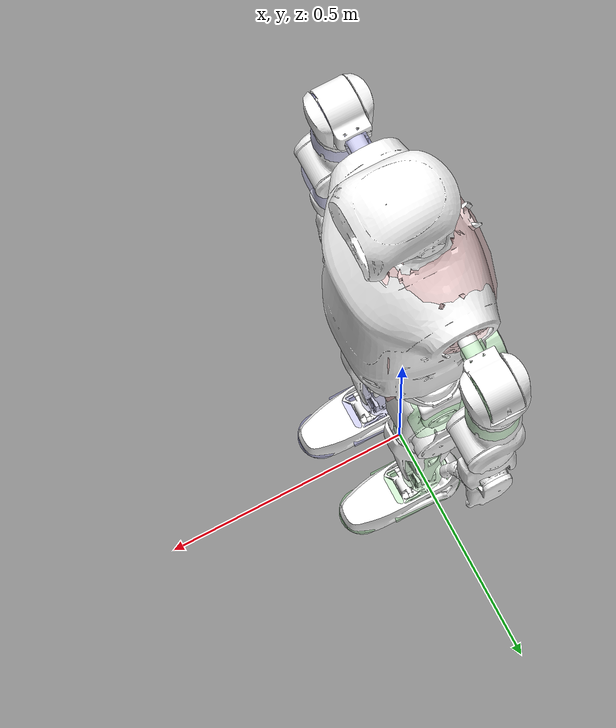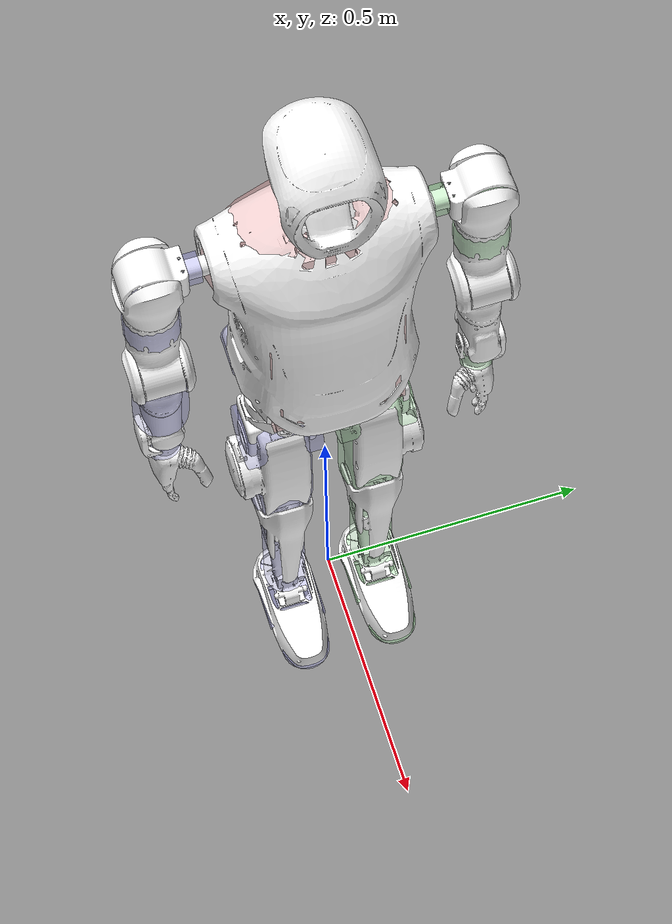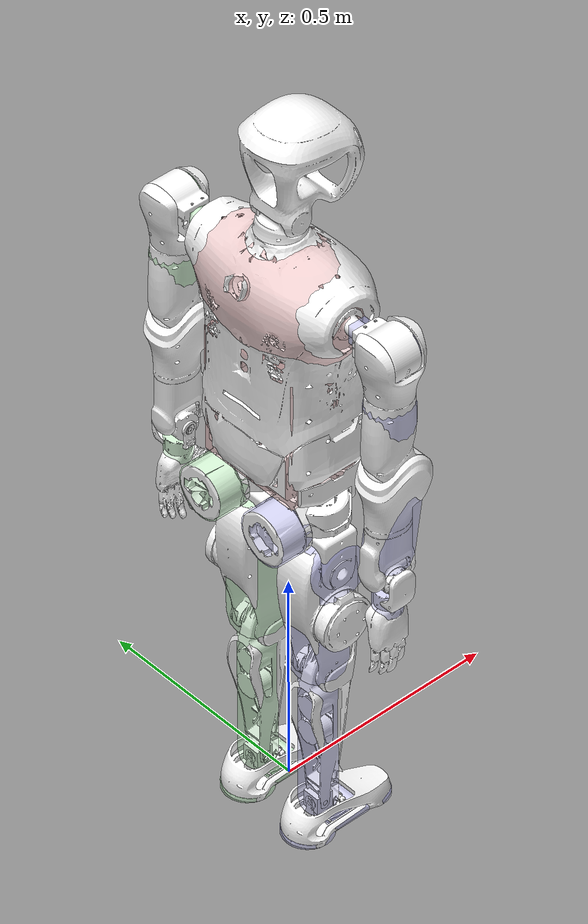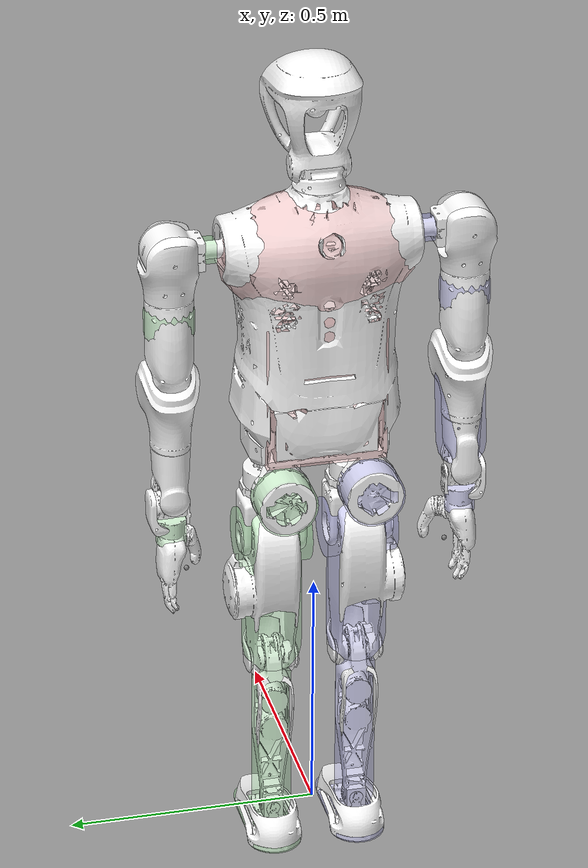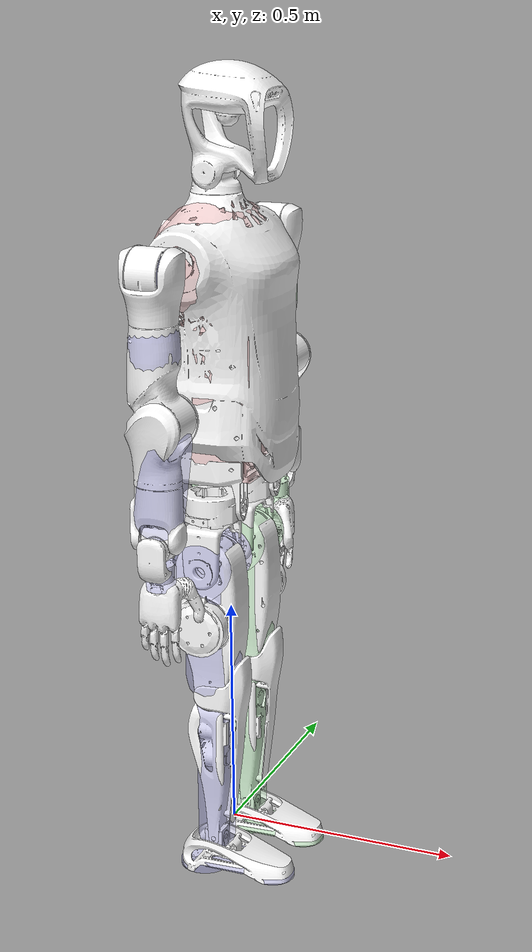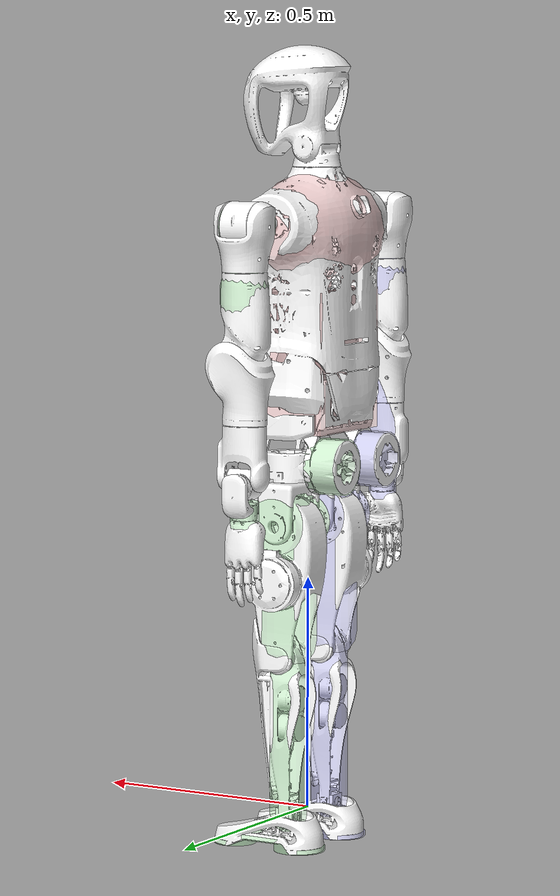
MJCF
<?xml version='1.0' encoding='utf-8'?>
<mujoco model="biped_s46">
  <compiler angle="radian" meshdir="../meshes/" />
  <size njmax="500" nconmax="100" />
  <default>
    <joint limited="true" armature="0.05" damping="0.2" frictionloss="0.02"/>
    <motor ctrllimited="true" ctrlrange="-100 100"/>
    <equality solref="0.005 1"/>
    <default class="collision">
      <!-- User parameter for geoms is used to identify collision types -->
      <geom material="collision" contype="4" conaffinity="4" user="2" rgba="0.9 0.3 0.3 0.2"/>
      <default class="collision-left">
        <geom contype="1" conaffinity="2" rgba="0.3 0.9 0.3 0.2"/>
      </default>
      <default class="collision-right">
        <geom contype="2" conaffinity="1" rgba="0.3 0.3 0.9 0.2"/>
      </default>
    </default>
  </default>
  <asset>
    <texture type="skybox" builtin="gradient" rgb1="0.4 0.6 0.8" width="128" height="128"/>
    <texture name="grid" type="2d" builtin="checker" rgb1=".1 .2 .3" rgb2=".2 .3 .4" width="300" height="300"/>
    <material name="grid" texture="grid" texrepeat="8 8" reflectance=".1"/>
    <material name="collision" rgba="0.1 0.5 0.9 0"/>
    <mesh name="torso" file="torso.STL" />
    <mesh name="l_leg_roll" file="l_leg_roll.STL" />
    <mesh name="l_leg_yaw" file="l_leg_yaw.STL" />
    <mesh name="l_leg_pitch" file="l_leg_pitch.STL" />
    <mesh name="l_knee" file="l_knee.STL" />
    <mesh name="l_foot_pitch" file="l_foot_pitch.STL" />
    <mesh name="l_foot_roll" file="l_foot_roll.STL" />
    <mesh name="r_leg_roll" file="r_leg_roll.STL" />
    <mesh name="r_leg_yaw" file="r_leg_yaw.STL" />
    <mesh name="r_leg_pitch" file="r_leg_pitch.STL" />
    <mesh name="r_knee" file="r_knee.STL" />
    <mesh name="r_foot_pitch" file="r_foot_pitch.STL" />
    <mesh name="r_foot_roll" file="r_foot_roll.STL" />
    <mesh name="l_arm_pitch" file="l_arm_pitch.STL" />
    <mesh name="l_arm_roll" file="l_arm_roll.STL" />
    <mesh name="l_arm_yaw" file="l_arm_yaw.STL" />
    <mesh name="l_forearm" file="l_forearm.STL" />
    <mesh name="l_hand_yaw" file="l_hand_yaw.STL" />
    <mesh name="l_hand_roll" file="l_hand_roll.STL" />
    <mesh name="l_hand_pitch" file="l_hand_pitch.STL" />
    <mesh name="r_arm_pitch" file="r_arm_pitch.STL" />
    <mesh name="r_arm_roll" file="r_arm_roll.STL" />
    <mesh name="r_arm_yaw" file="r_arm_yaw.STL" />
    <mesh name="r_forearm" file="r_forearm.STL" />
    <mesh name="r_hand_yaw" file="r_hand_yaw.STL" />
    <mesh name="r_hand_roll" file="r_hand_roll.STL" />
    <mesh name="r_hand_pitch" file="r_hand_pitch.STL" />
    <mesh name="head_yaw" file="head_yaw.STL" />
    <mesh name="head_pitch" file="head_pitch.STL" />
    <mesh name="head_camera" file="head_camera.STL" />
  </asset>
  <worldbody>
    <body name="base_link" pos="0 0 0.82">
      <freejoint />
      <site name="imu" pos="0 0 0" />
      <inertial pos="-0.00761 0.00182 0.21995" quat="0.998529 4.54328e-05 0.0542216 0.000512508" mass="26.8303" diaginertia="0.938886 0.825905 0.269012" />
      <geom type="mesh" contype="0" conaffinity="0" group="1" density="0" rgba="1 1 1 1" mesh="torso" />
      <geom type="box" size="0.1 0.12 0.15" pos="0 0 0.15" class="collision"/>
      <geom type="ellipsoid" size="0.12 0.2 0.13" pos="-0.02 0 0.42" class="collision"/>
      <body name="leg_l1_link" pos="-0.0024999 0.087 -0.066">
        <inertial pos="-0.00402302 0.00013568 -0.00908713" quat="-0.00566884 0.723807 0.00605909 0.689952" mass="1.75436" diaginertia="0.00377365 0.00281073 0.002133" />
        <joint limited="true" name="leg_l1_joint" pos="0 0 0" axis="1 0 0" range="-0.314159 0.663225" actuatorfrcrange="-180 180" damping="2" frictionloss="0.5" armature="0.12" />
        <geom type="mesh" contype="0" conaffinity="0" group="1" density="0" rgba="1 1 1 1" mesh="l_leg_roll" />
        <geom type='cylinder' size='0.06' fromto='-0.14 0 0 -0.07 0 0' class='collision-left'/>
        <body name="leg_l2_link">
          <inertial pos="-0.00277949 0.00478016 -0.0778348" quat="0.779415 0.625672 -0.0267531 0.0182007" mass="0.651964" diaginertia="0.00252814 0.00192832 0.0013047" />
          <joint limited="true" name="leg_l2_joint" pos="0 0 0" axis="0 0 1" range="-0.872665 0.785398" actuatorfrcrange="-100 100" damping="0.5" frictionloss="0.5" armature="0.0508" />
          <geom type="mesh" contype="0" conaffinity="0" group="1" density="0" rgba="1 1 1 1" mesh="l_leg_yaw" />
          <body name="leg_l3_link" pos="0 0 -0.1287">
            <inertial pos="0.00106133 0.00970189 -0.082999" quat="0.747795 0.0205056 -0.0433254 0.662197" mass="4.78669" diaginertia="0.0438713 0.0424814 0.0108916" />
            <joint limited="true" name="leg_l3_joint" pos="0 0 0" axis="0 1 0" range="-2.00713 1.5708" actuatorfrcrange="-100 100" damping="0.5" frictionloss="0.5" armature="0.0508" />
            <geom type="mesh" contype="0" conaffinity="0" group="1" density="0" rgba="1 1 1 1" mesh="l_leg_pitch" />
            <geom type='cylinder' size='0.06' fromto='0 -0.07 0 0 0.07 0' class='collision-left'/>
            <geom type='capsule' size='0.06' fromto='0 0 0 0 0 -0.25' class='collision-left'/>
            <body name="leg_l4_link" pos="0 0 -0.284">
              <inertial pos="0.00811619 -1.521e-05 -0.110503" quat="0.692694 -0.00356377 -0.00077448 0.721222" mass="1.8783" diaginertia="0.0154377 0.0153452 0.00111621" />
              <joint limited="true" name="leg_l4_joint" pos="0 0 0" axis="0 1 0" range="0 2.53073" actuatorfrcrange="-180 180" damping="2" frictionloss="0.5" armature="0.12" />
              <geom type="mesh" contype="0" conaffinity="0" group="1" density="0" rgba="1 1 1 1" mesh="l_knee" />
              <geom type='capsule' size='0.04' fromto='0 0 0 0 0 -0.34' class='collision-left'/>
              <body name="leg_l5_link" pos="0 0 -0.346">
                <inertial pos="0 0 0" quat="0.5 0.5 -0.5 0.5" mass="0.0719352" diaginertia="1.218e-05 6.92e-06 6.92e-06" />
                <joint limited="true" name="leg_l5_joint" pos="0 0 0" axis="0 1 0" range="-0.872665 0.349066" actuatorfrcrange="-36 36" damping="1" frictionloss="0.5" armature="0.05" />
                <geom type="mesh" contype="0" conaffinity="0" group="1" density="0" rgba="1 1 1 1" mesh="l_foot_pitch" />
                <body name="leg_l6_link">
                  <site name="l_ft_frame" pos="0 0 0" size="0.02 0.02 0.02" rgba="1 1 1 1" type="box" group="1"/>
                  <inertial pos="0.0286226 1.67708e-05 -0.0388468" quat="2.33986e-05 0.726543 4.17054e-05 0.687121" mass="0.765024" diaginertia="0.00310035 0.00293209 0.000791096" />
                  <joint limited="true" name="leg_l6_joint" pos="0 0 0" axis="1 0 0" range="-0.261799 0.261799" actuatorfrcrange="-36 36" damping="1" frictionloss="0.5" armature="0.05" />
                  <geom type="mesh" contype="0" conaffinity="0" group="1" density="0" rgba="1 1 1 1" mesh="l_foot_roll" />
                  <geom type="box" size="0.045 0.055 0.005" pos="0.04 0 -0.045" class="collision-left"/>
                  <geom type="cylinder" size="0.046 0.005 0.005" pos="0.132 0 -0.065" class="collision-left"/>
                  <geom type="cylinder" size="0.055 0.005 0.005" pos="-0.027 0 -0.065" class="collision-left"/>
                </body>
              </body>
            </body>
          </body>
        </body>
      </body>
      <body name="leg_r1_link" pos="-0.0024999 -0.087 -0.066">
        <inertial pos="-0.004023 -0.00013567 -0.00908714" quat="0.00566884 0.723807 -0.00605909 0.689952" mass="1.75436" diaginertia="0.00377365 0.00281073 0.002133" />
        <joint limited="true" name="leg_r1_joint" pos="0 0 0" axis="1 0 0" range="-0.663225 0.314159" actuatorfrcrange="-180 180" damping="2" frictionloss="0.5" armature="0.12" />
        <geom type="mesh" contype="0" conaffinity="0" group="1" density="0" rgba="1 1 1 1" mesh="r_leg_roll" />
        <geom type='cylinder' size='0.06' fromto='-0.14 0 0 -0.07 0 0' class='collision-right'/>
        <body name="leg_r2_link">
          <inertial pos="-0.00277949 -0.00477985 -0.077836" quat="0.625672 0.779415 -0.0182021 0.0267546" mass="0.651944" diaginertia="0.00252807 0.00192829 0.00130467" />
          <joint limited="true" name="leg_r2_joint" pos="0 0 0" axis="0 0 1" range="-0.785398 0.872665" actuatorfrcrange="-100 100" damping="0.5" frictionloss="0.5" armature="0.0508" />
          <geom type="mesh" contype="0" conaffinity="0" group="1" density="0" rgba="1 1 1 1" mesh="r_leg_yaw" />
          <body name="leg_r3_link" pos="0 0 -0.1287">
            <inertial pos="0.0010631 -0.00970056 -0.0830053" quat="0.662201 -0.0433265 0.0205153 0.747791" mass="4.78628" diaginertia="0.0438668 0.0424769 0.0108912" />
            <joint limited="true" name="leg_r3_joint" pos="0 0 0" axis="0 1 0" range="-2.00713 1.5708" actuatorfrcrange="-100 100" damping="0.5" frictionloss="0.5" armature="0.0508" />
            <geom type="mesh" contype="0" conaffinity="0" group="1" density="0" rgba="1 1 1 1" mesh="r_leg_pitch" />
            <geom type='cylinder' size='0.06' fromto='0 -0.07 0 0 0.07 0' class='collision-right'/>
            <geom type='capsule' size='0.06' fromto='0 0 0 0 0 -0.25' class='collision-right'/>
            <body name="leg_r4_link" pos="0 0 -0.284">
              <inertial pos="0.00810188 3.554e-05 -0.110376" quat="0.716783 -0.00073364 -0.00348684 0.697287" mass="1.87881" diaginertia="0.0158285 0.0156955 0.00148831" />
              <joint limited="true" name="leg_r4_joint" pos="0 0 0" axis="0 1 0" range="0 2.53073" actuatorfrcrange="-180 180" damping="2" frictionloss="0.5" armature="0.12" />
              <geom type="mesh" contype="0" conaffinity="0" group="1" density="0" rgba="1 1 1 1" mesh="r_knee" />
              <geom type='capsule' size='0.04' fromto='0 0 0 0 0 -0.34' class='collision-right'/>
              <body name="leg_r5_link" pos="0 0 -0.346">
                <inertial pos="0 0 0" quat="0.5 0.5 -0.5 0.5" mass="0.0719352" diaginertia="1.218e-05 6.92e-06 6.92e-06" />
                <joint limited="true" name="leg_r5_joint" pos="0 0 0" axis="0 1 0" range="-0.872665 0.349066" actuatorfrcrange="-36 36" damping="1" frictionloss="0.5" armature="0.05" />
                <geom type="mesh" contype="0" conaffinity="0" group="1" density="0" rgba="1 1 1 1" mesh="r_foot_pitch" />
                <body name="leg_r6_link">
                  <site name="r_ft_frame" pos="0 0 0" size="0.02 0.02 0.02" rgba="1 1 1 1" type="box" group="1"/>
                  <inertial pos="0.0286226 1.67708e-05 -0.0388468" quat="2.33986e-05 0.726543 4.17054e-05 0.687121" mass="0.765024" diaginertia="0.00310035 0.00293209 0.000791096" />
                  <joint limited="true" name="leg_r6_joint" pos="0 0 0" axis="1 0 0" range="-0.261799 0.261799" actuatorfrcrange="-36 36" damping="1" frictionloss="0.5" armature="0.05" />
                  <geom type="mesh" contype="0" conaffinity="0" group="1" density="0" rgba="1 1 1 1" mesh="r_foot_roll" />
                  <geom type="box" size="0.045 0.055 0.005" pos="0.04 0 -0.045" class="collision-right"/>
                  <geom type="cylinder" size="0.046 0.005 0.005" pos="0.132 0 -0.065" class="collision-right"/>
                  <geom type="cylinder" size="0.055 0.005 0.005" pos="-0.027 0 -0.065" class="collision-right"/>
                </body>
              </body>
            </body>
          </body>
        </body>
      </body>
      <body name="zarm_l1_link" pos="-0.0174999 0.2927 0.445">
        <inertial pos="-0.00083 -0.02218 0.00035" quat="0.507855 0.504005 -0.503768 0.484025" mass="0.962" diaginertia="0.00227032 0.0022507 0.000988974" />
        <joint limited="true" name="zarm_l1_joint" pos="0 0 0" axis="0 1 0" range="-3.14159 1.5708" actuatorfrcrange="-100 100" damping="2" frictionloss="0.5" armature="0.12" />
        <geom type="mesh" contype="0" conaffinity="0" group="1" density="0" rgba="1 1 1 1" mesh="l_arm_pitch" />
        <geom type="box" size="0.02 0.02 0.02" pos="0.00 -0.07 0" class='collision-left' />
        <body name="zarm_l2_link">
          <inertial pos="-0.00791 0 -0.04655" quat="0.705843 -0.0422654 -0.0422654 0.705843" mass="0.57" diaginertia="0.00211 0.00163601 0.00121399" />
          <joint limited="true" name="zarm_l2_joint" pos="0 0 0" axis="1 0 0" range="-0.349066 2.0944" actuatorfrcrange="-50 50" damping="0.5" frictionloss="0.5" armature="0.05" />
          <geom type="mesh" contype="0" conaffinity="0" group="1" density="0" rgba="1 1 1 1" mesh="l_arm_roll" />
          <geom type='cylinder' size='0.045' fromto='0.04 0 0 -0.02 0 0' class='collision-left'/>
          <body name="zarm_l3_link">
            <inertial pos="0.00628 0.00107 -0.20878" quat="0.46857 -0.0547044 -0.0420079 0.88073" mass="1.65" diaginertia="0.00829713 0.00825256 0.00194031" />
            <joint limited="true" name="zarm_l3_joint" pos="0 0 0" axis="0 0 1" range="-1.5708 1.5708" actuatorfrcrange="-39 39" damping="1" frictionloss="0.5" armature="0.05" />
            <geom type="mesh" contype="0" conaffinity="0" group="1" density="0" rgba="1 1 1 1" mesh="l_arm_yaw" />
            <geom type='capsule' size='0.05' fromto='0 0 -0.12 0 0 -0.16' class='collision-left'/>
            <body name="zarm_l4_link" pos="0.02 0 -0.2837">
              <inertial pos="-0.01611 0.00143 -0.04857" quat="0.99579 0 0.0916646 0" mass="0.429" diaginertia="0.00136857 0.00114 0.000811432" />
              <joint limited="true" name="zarm_l4_joint" pos="0 0 0" axis="0 1 0" range="-2.61799 0" actuatorfrcrange="-50 50" damping="0.5" frictionloss="0.5" armature="0.05" />
              <geom type="mesh" contype="0" conaffinity="0" group="1" density="0" rgba="1 1 1 1" mesh="l_forearm" />
              <body name="zarm_l5_link" pos="-0.02 0 -0.126">
                <inertial pos="-0.00207 0.00018 -0.05079" quat="0.70482 0.0568167 0.0568167 0.70482" mass="0.61" diaginertia="0.00146 0.00107649 0.000823509" />
                <joint limited="true" name="zarm_l5_joint" pos="0 0 0" axis="0 0 1" range="-1.5708 1.5708" actuatorfrcrange="-12 12" damping="0.5" frictionloss="0.05" armature="0.05" />
                <geom type="mesh" contype="0" conaffinity="0" group="1" density="0" rgba="1 1 1 1" mesh="l_hand_yaw" />
                <body name="zarm_l6_link" pos="0 0 -0.1075">
                  <inertial pos="-0.00110825 0.00329733 -0.0135974" quat="0.62329 0.333427 0.624343 0.332464" mass="0.331524" diaginertia="0.000284664 0.000278758 0.000233415" />
                  <joint limited="true" name="zarm_l6_joint" pos="0 0 0" axis="1 0 0" range="-1.309 0.698132" actuatorfrcrange="-12 12" damping="0.5" frictionloss="0.05" armature="0.05" />
                  <geom type="mesh" contype="0" conaffinity="0" group="1" density="0" rgba="1 1 1 1" mesh="l_hand_roll" />
                  <geom size="0.005" pos="0 -0.03 -0.17" />
                  <body name="zarm_l7_link" pos="0 0 -0.021">
                    <inertial pos="0.00186 0.01014 -0.09044" quat="0.958999 -0.0379968 -0.00699973 0.280763" mass="0.64" diaginertia="0.000716212 0.000697251 0.000116537" />
                    <joint limited="true" name="zarm_l7_joint" pos="0 0 0" axis="0 1 0" range="-0.698132 0.698132" actuatorfrcrange="-12 12" damping="0.5" frictionloss="0.05" armature="0.05" />
                    <geom type="mesh" contype="0" conaffinity="0" group="1" density="0" rgba="1 1 1 1" mesh="l_hand_pitch" />
                    <geom type="cylinder" size="0.03" fromto="0 0 -0.03 0 0 -0.085" class='collision-left' />
                  </body>
                </body>
              </body>
            </body>
          </body>
        </body>
      </body>
      <body name="zarm_r1_link" pos="-0.0174999 -0.2927 0.445">
        <inertial pos="-0.00083 0.02218 0.00035" quat="0.504005 0.507855 -0.484025 0.503768" mass="0.962" diaginertia="0.00227032 0.0022507 0.000988974" />
        <joint limited="true" name="zarm_r1_joint" pos="0 0 0" axis="0 1 0" range="-3.14159 1.5708" actuatorfrcrange="-100 100" damping="2" frictionloss="0.5" armature="0.12" />
        <geom type="mesh" contype="0" conaffinity="0" group="1" density="0" rgba="1 1 1 1" mesh="r_arm_pitch" />
        <geom type="box" size="0.02 0.02 0.02" pos="0.00 0.07 0" class='collision-right' />
        <body name="zarm_r2_link">
          <inertial pos="-0.00791 0 -0.04655" quat="0.705843 -0.0422654 -0.0422654 0.705843" mass="0.57" diaginertia="0.00211 0.00163601 0.00121399" />
          <joint limited="true" name="zarm_r2_joint" pos="0 0 0" axis="1 0 0" range="-2.0944 0.349066" actuatorfrcrange="-50 50" damping="0.5" frictionloss="0.5" armature="0.05" />
          <geom type="mesh" contype="0" conaffinity="0" group="1" density="0" rgba="1 1 1 1" mesh="r_arm_roll" />
          <geom type='cylinder' size='0.045' fromto='0.04 0 0 -0.02 0 0' class='collision-right'/>
          <body name="zarm_r3_link">
            <inertial pos="0.00628 -0.00107 -0.20878" quat="0.88073 -0.0420079 -0.0547044 0.46857" mass="1.65" diaginertia="0.00829713 0.00825256 0.00194031" />
            <joint limited="true" name="zarm_r3_joint" pos="0 0 0" axis="0 0 1" range="-1.5708 1.5708" actuatorfrcrange="-39 39" damping="1" frictionloss="0.5" armature="0.05" />
            <geom type="mesh" contype="0" conaffinity="0" group="1" density="0" rgba="1 1 1 1" mesh="r_arm_yaw" />
            <geom type='capsule' size='0.05' fromto='0 0 -0.12 0 0 -0.16' class='collision-right'/>
            <body name="zarm_r4_link" pos="0.02 0 -0.2837">
              <inertial pos="-0.01611 -0.00143 -0.04857" quat="0.99579 0 0.0916646 0" mass="0.429" diaginertia="0.00136857 0.00114 0.000811432" />
              <joint limited="true" name="zarm_r4_joint" pos="0 0 0" axis="0 1 0" range="-2.61799 0" actuatorfrcrange="-50 50" damping="0.5" frictionloss="0.5" armature="0.05" />
              <geom type="mesh" contype="0" conaffinity="0" group="1" density="0" rgba="1 1 1 1" mesh="r_forearm" />
              <geom type='capsule' size='0.05' fromto='0 0 -0.04 -0.020 0 -0.19' class='collision-right'/>
              <body name="zarm_r5_link" pos="-0.02 0 -0.126">
                <inertial pos="-0.00207 -0.00018 -0.05079" quat="0.70482 0.0568167 0.0568167 0.70482" mass="0.61" diaginertia="0.00146 0.00107649 0.000823509" />
                <joint limited="true" name="zarm_r5_joint" pos="0 0 0" axis="0 0 1" range="-1.5708 1.5708" actuatorfrcrange="-12 12" damping="0.5" frictionloss="0.05" armature="0.05" />
                <geom type="mesh" contype="0" conaffinity="0" group="1" density="0" rgba="1 1 1 1" mesh="r_hand_yaw" />
                <body name="zarm_r6_link" pos="0 0 -0.1075">
                  <inertial pos="-0.00110825 -0.00329733 -0.0135974" quat="0.332464 0.624343 0.333427 0.62329" mass="0.331524" diaginertia="0.000284664 0.000278758 0.000233415" />
                  <joint limited="true" name="zarm_r6_joint" pos="0 0 0" axis="1 0 0" range="-0.698132 1.309" actuatorfrcrange="-12 12" damping="0.5" frictionloss="0.05" armature="0.05" />
                  <geom type="mesh" contype="0" conaffinity="0" group="1" density="0" rgba="1 1 1 1" mesh="r_hand_roll" />
                  <geom size="0.005" pos="0 0.03 -0.17" />
                  <body name="zarm_r7_link" pos="0 0 -0.021">
                    <inertial pos="0.00186 -0.01014 -0.09044" quat="0.953823 0.047772 -0.00410104 -0.296518" mass="0.64" diaginertia="0.000696371 0.000678811 0.000114818" />
                    <joint limited="true" name="zarm_r7_joint" pos="0 0 0" axis="0 1 0" range="-0.698132 0.698132" actuatorfrcrange="-12 12" damping="0.5" frictionloss="0.05" armature="0.05" />
                    <geom type="mesh" contype="0" conaffinity="0" group="1" density="0" rgba="1 1 1 1" mesh="r_hand_pitch" />
                    <geom type="cylinder" size="0.03" fromto="0 0 -0.03 0 0 -0.085" class='collision-right' />
                  </body>
                </body>
              </body>
            </body>
          </body>
        </body>
      </body>
      <body name="zhead_1_link" pos="-0.0184999 0 0.6014">
        <inertial pos="-0.00031 0.00037 -0.01205" mass="0.35" diaginertia="7e-05 5e-05 5e-05" />
        <joint limited="true" name="zhead_1_joint" pos="0 0 0" axis="0 0 1" range="-1.5708 1.5708" actuatorfrcrange="-1.5 1.5" damping="0.5" frictionloss="0.05" armature="0.05" />
        <geom type="mesh" contype="0" conaffinity="0" group="1" density="0" rgba="1 1 1 1" mesh="head_yaw" />
        <body name="zhead_2_link">
          <inertial pos="0.0268676 0.000378234 0.0745327" quat="0.443488 -0.113722 -0.0346749 0.88836" mass="0.835026" diaginertia="0.0045993 0.00450499 0.00301055" />
          <joint limited="true" name="zhead_2_joint" pos="0 0 0" axis="0 1 0" range="-0.523599 0.523599" actuatorfrcrange="-12 12" damping="0.5" frictionloss="0.05" armature="0.05" />
          <geom type="mesh" contype="0" conaffinity="0" group="1" density="0" rgba="1 1 1 1" mesh="head_pitch" />
          <geom pos="0.117357 0.0176534 0.152372" quat="0.970296 0 0.241922 0" type="mesh" contype="0" conaffinity="0" group="1" density="0" rgba="1 1 1 1" mesh="head_camera" />
        </body>
      </body>
    </body>
  </worldbody>
  <actuator>
    <motor gear="1" joint="leg_l1_joint" name="leg_l1_joint_motor" ctrllimited="true" ctrlrange="-180 180" />
    <motor gear="1" joint="leg_l2_joint" name="leg_l2_joint_motor" ctrllimited="true" ctrlrange="-100 100" />
    <motor gear="1" joint="leg_l3_joint" name="leg_l3_joint_motor" ctrllimited="true" ctrlrange="-100 100" />
    <motor gear="1" joint="leg_l4_joint" name="leg_l4_joint_motor" ctrllimited="true" ctrlrange="-180 180" />
    <motor gear="1" joint="leg_l5_joint" name="leg_l5_joint_motor" ctrllimited="true" ctrlrange="-36 36" />
    <motor gear="1" joint="leg_l6_joint" name="leg_l6_joint_motor" ctrllimited="true" ctrlrange="-36 36" />
    <motor gear="1" joint="leg_r1_joint" name="leg_r1_joint_motor" ctrllimited="true" ctrlrange="-180 180" />
    <motor gear="1" joint="leg_r2_joint" name="leg_r2_joint_motor" ctrllimited="true" ctrlrange="-100 100" />
    <motor gear="1" joint="leg_r3_joint" name="leg_r3_joint_motor" ctrllimited="true" ctrlrange="-100 100" />
    <motor gear="1" joint="leg_r4_joint" name="leg_r4_joint_motor" ctrllimited="true" ctrlrange="-180 180" />
    <motor gear="1" joint="leg_r5_joint" name="leg_r5_joint_motor" ctrllimited="true" ctrlrange="-36 36" />
    <motor gear="1" joint="leg_r6_joint" name="leg_r6_joint_motor" ctrllimited="true" ctrlrange="-36 36" />
    <motor gear="1" joint="zarm_l1_joint" name="zarm_l1_joint_motor" ctrllimited="true" ctrlrange="-100 100" />
    <motor gear="1" joint="zarm_l2_joint" name="zarm_l2_joint_motor" ctrllimited="true" ctrlrange="-50 50" />
    <motor gear="1" joint="zarm_l3_joint" name="zarm_l3_joint_motor" ctrllimited="true" ctrlrange="-39 39" />
    <motor gear="1" joint="zarm_l4_joint" name="zarm_l4_joint_motor" ctrllimited="true" ctrlrange="-50 50" />
    <motor gear="1" joint="zarm_l5_joint" name="zarm_l5_joint_motor" ctrllimited="true" ctrlrange="-12 12" />
    <motor gear="1" joint="zarm_l6_joint" name="zarm_l6_joint_motor" ctrllimited="true" ctrlrange="-12 12" />
    <motor gear="1" joint="zarm_l7_joint" name="zarm_l7_joint_motor" ctrllimited="true" ctrlrange="-12 12" />
    <motor gear="1" joint="zarm_r1_joint" name="zarm_r1_joint_motor" ctrllimited="true" ctrlrange="-100 100" />
    <motor gear="1" joint="zarm_r2_joint" name="zarm_r2_joint_motor" ctrllimited="true" ctrlrange="-50 50" />
    <motor gear="1" joint="zarm_r3_joint" name="zarm_r3_joint_motor" ctrllimited="true" ctrlrange="-39 39" />
    <motor gear="1" joint="zarm_r4_joint" name="zarm_r4_joint_motor" ctrllimited="true" ctrlrange="-50 50" />
    <motor gear="1" joint="zarm_r5_joint" name="zarm_r5_joint_motor" ctrllimited="true" ctrlrange="-12 12" />
    <motor gear="1" joint="zarm_r6_joint" name="zarm_r6_joint_motor" ctrllimited="true" ctrlrange="-12 12" />
    <motor gear="1" joint="zarm_r7_joint" name="zarm_r7_joint_motor" ctrllimited="true" ctrlrange="-12 12" />
    <motor gear="1" joint="zhead_1_joint" name="zhead_1_joint_motor" ctrllimited="true" ctrlrange="-1.5 1.5" />
    <motor gear="1" joint="zhead_2_joint" name="zhead_2_joint_motor" ctrllimited="true" ctrlrange="-12 12" />
  </actuator>
  <sensor>
    <accelerometer name="BodyAcc" site="imu" />
    <velocimeter name="BodyVel" site="imu" />
    <gyro name="BodyGyro" site="imu" />
    <framepos name="BodyPos" objtype="site" objname="imu" />
    <framequat name="BodyQuat" objtype="site" objname="imu" />
    <force name="l_force" site="l_ft_frame"/>
    <torque name="l_torque" site="l_ft_frame"/>
    <force name="r_force" site="r_ft_frame"/>
    <torque name="r_torque" site="r_ft_frame"/>
    <jointpos name="leg_l1_joint_pos" joint="leg_l1_joint" />
    <jointpos name="leg_l2_joint_pos" joint="leg_l2_joint" />
    <jointpos name="leg_l3_joint_pos" joint="leg_l3_joint" />
    <jointpos name="leg_l4_joint_pos" joint="leg_l4_joint" />
    <jointpos name="leg_l5_joint_pos" joint="leg_l5_joint" />
    <jointpos name="leg_l6_joint_pos" joint="leg_l6_joint" />
    <jointpos name="leg_r1_joint_pos" joint="leg_r1_joint" />
    <jointpos name="leg_r2_joint_pos" joint="leg_r2_joint" />
    <jointpos name="leg_r3_joint_pos" joint="leg_r3_joint" />
    <jointpos name="leg_r4_joint_pos" joint="leg_r4_joint" />
    <jointpos name="leg_r5_joint_pos" joint="leg_r5_joint" />
    <jointpos name="leg_r6_joint_pos" joint="leg_r6_joint" />
    <jointpos name="zarm_l1_joint_pos" joint="zarm_l1_joint" />
    <jointpos name="zarm_l2_joint_pos" joint="zarm_l2_joint" />
    <jointpos name="zarm_l3_joint_pos" joint="zarm_l3_joint" />
    <jointpos name="zarm_l4_joint_pos" joint="zarm_l4_joint" />
    <jointpos name="zarm_l5_joint_pos" joint="zarm_l5_joint" />
    <jointpos name="zarm_l6_joint_pos" joint="zarm_l6_joint" />
    <jointpos name="zarm_l7_joint_pos" joint="zarm_l7_joint" />
    <jointpos name="zarm_r1_joint_pos" joint="zarm_r1_joint" />
    <jointpos name="zarm_r2_joint_pos" joint="zarm_r2_joint" />
    <jointpos name="zarm_r3_joint_pos" joint="zarm_r3_joint" />
    <jointpos name="zarm_r4_joint_pos" joint="zarm_r4_joint" />
    <jointpos name="zarm_r5_joint_pos" joint="zarm_r5_joint" />
    <jointpos name="zarm_r6_joint_pos" joint="zarm_r6_joint" />
    <jointpos name="zarm_r7_joint_pos" joint="zarm_r7_joint" />
    <jointpos name="zhead_1_joint_pos" joint="zhead_1_joint" />
    <jointpos name="zhead_2_joint_pos" joint="zhead_2_joint" />
    <jointvel name="leg_l1_joint_vel" joint="leg_l1_joint" />
    <jointvel name="leg_l2_joint_vel" joint="leg_l2_joint" />
    <jointvel name="leg_l3_joint_vel" joint="leg_l3_joint" />
    <jointvel name="leg_l4_joint_vel" joint="leg_l4_joint" />
    <jointvel name="leg_l5_joint_vel" joint="leg_l5_joint" />
    <jointvel name="leg_l6_joint_vel" joint="leg_l6_joint" />
    <jointvel name="leg_r1_joint_vel" joint="leg_r1_joint" />
    <jointvel name="leg_r2_joint_vel" joint="leg_r2_joint" />
    <jointvel name="leg_r3_joint_vel" joint="leg_r3_joint" />
    <jointvel name="leg_r4_joint_vel" joint="leg_r4_joint" />
    <jointvel name="leg_r5_joint_vel" joint="leg_r5_joint" />
    <jointvel name="leg_r6_joint_vel" joint="leg_r6_joint" />
    <jointvel name="zarm_l1_joint_vel" joint="zarm_l1_joint" />
    <jointvel name="zarm_l2_joint_vel" joint="zarm_l2_joint" />
    <jointvel name="zarm_l3_joint_vel" joint="zarm_l3_joint" />
    <jointvel name="zarm_l4_joint_vel" joint="zarm_l4_joint" />
    <jointvel name="zarm_l5_joint_vel" joint="zarm_l5_joint" />
    <jointvel name="zarm_l6_joint_vel" joint="zarm_l6_joint" />
    <jointvel name="zarm_l7_joint_vel" joint="zarm_l7_joint" />
    <jointvel name="zarm_r1_joint_vel" joint="zarm_r1_joint" />
    <jointvel name="zarm_r2_joint_vel" joint="zarm_r2_joint" />
    <jointvel name="zarm_r3_joint_vel" joint="zarm_r3_joint" />
    <jointvel name="zarm_r4_joint_vel" joint="zarm_r4_joint" />
    <jointvel name="zarm_r5_joint_vel" joint="zarm_r5_joint" />
    <jointvel name="zarm_r6_joint_vel" joint="zarm_r6_joint" />
    <jointvel name="zarm_r7_joint_vel" joint="zarm_r7_joint" />
    <jointvel name="zhead_1_joint_vel" joint="zhead_1_joint" />
    <jointvel name="zhead_2_joint_vel" joint="zhead_2_joint" />
  </sensor>
</mujoco>
